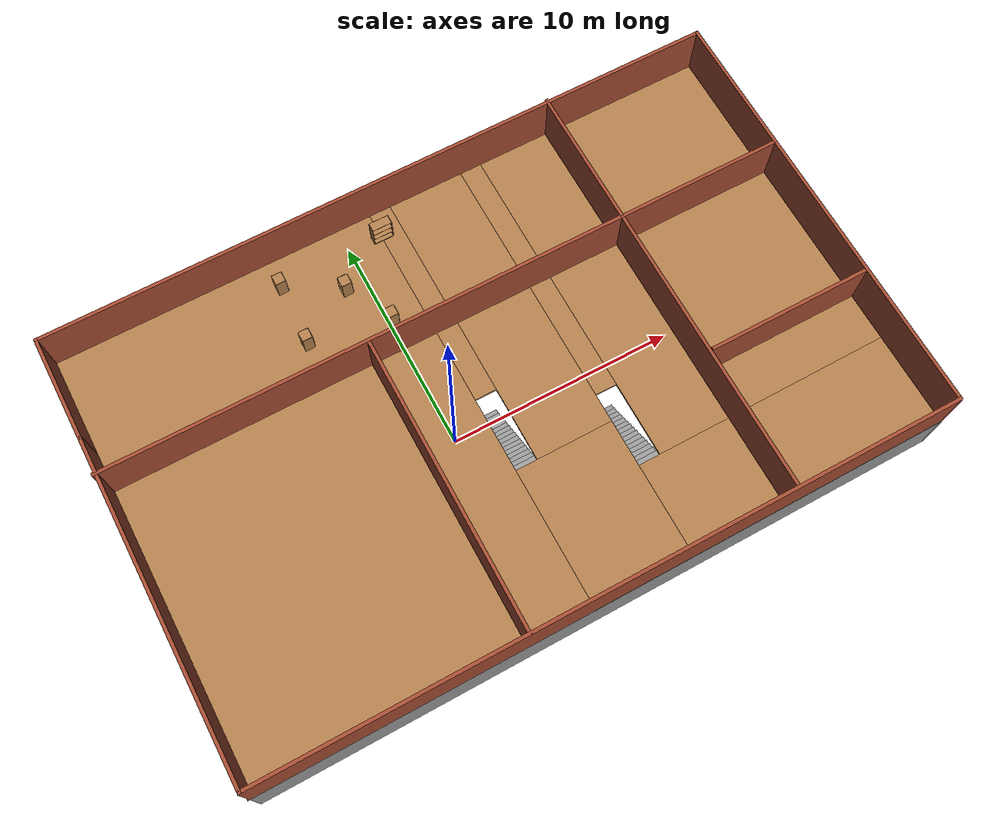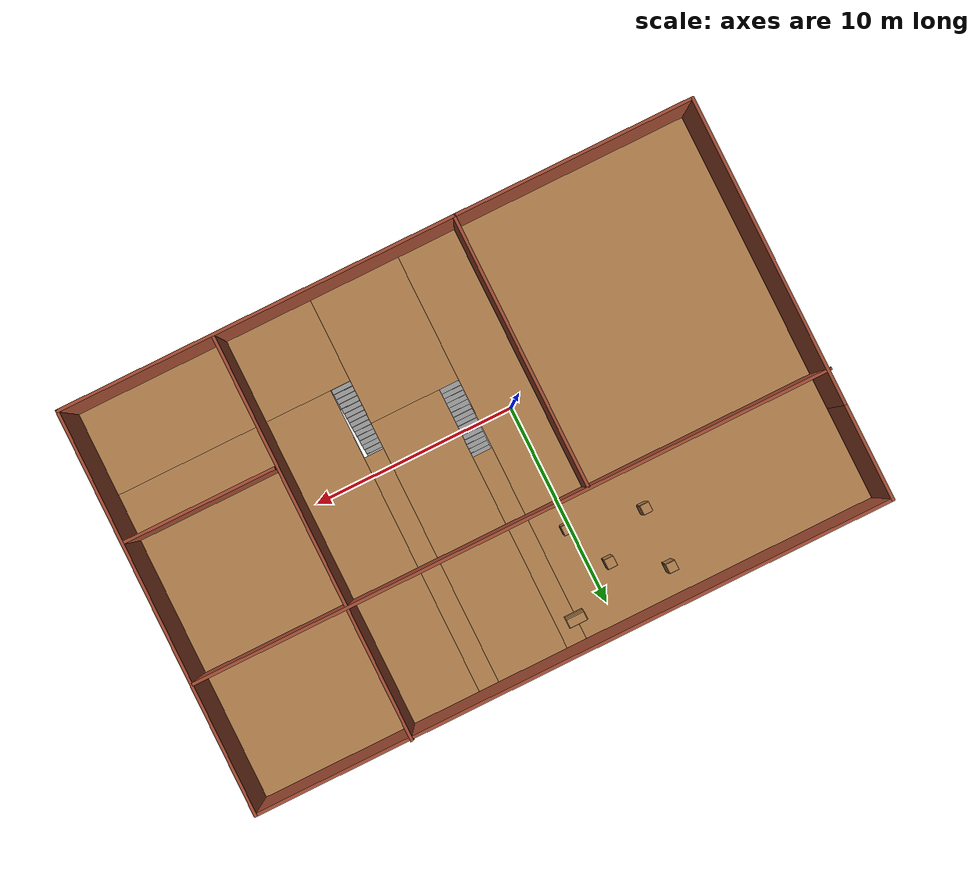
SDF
<sdf version="1.6">
 <world name="default">
  <model name="Untitled">
   <pose>2.40942 1.27756 -2.6 0 -0 0</pose>
   <link name="Floor_1">
    <pose>-0 -0 2.5 0 -0 0</pose>
    <visual name="Floor_1_Visual_0">
     <pose>-8.31719 0 0.05 0 -0 0</pose>
     <geometry><box><size>14.9584 20.0724 0.1</size></box></geometry>
     <material>
      <script><uri>file://media/materials/scripts/gazebo.material</uri><name>Gazebo/Wood</name></script>
      <ambient>1 1 1 1</ambient>
     </material>
     <meta><layer>1</layer></meta>
    </visual>
    <collision name="Floor_1_Collision_0">
     <geometry><box><size>14.9584 20.0724 0.1</size></box></geometry>
     <pose>-8.31719 0 0.05 0 -0 0</pose>
    </collision>
    <visual name="Floor_1_Visual_1">
     <pose>1.42625 -6.78262 0.05 0 -0 0</pose>
     <geometry><box><size>4.52845 6.50717 0.1</size></box></geometry>
     <material>
      <script><uri>file://media/materials/scripts/gazebo.material</uri><name>Gazebo/Wood</name></script>
      <ambient>1 1 1 1</ambient>
     </material>
     <meta><layer>1</layer></meta>
    </visual>
    <collision name="Floor_1_Collision_1">
     <geometry><box><size>4.52845 6.50717 0.1</size></box></geometry>
     <pose>1.42625 -6.78262 0.05 0 -0 0</pose>
    </collision>
    <visual name="Floor_1_Visual_2">
     <pose>9.74344 -7.87936 0.05 0 -0 0</pose>
     <geometry><box><size>12.1059 4.3137 0.1</size></box></geometry>
     <material>
      <script><uri>file://media/materials/scripts/gazebo.material</uri><name>Gazebo/Wood</name></script>
      <ambient>1 1 1 1</ambient>
     </material>
     <meta><layer>1</layer></meta>
    </visual>
    <collision name="Floor_1_Collision_2">
     <geometry><box><size>12.1059 4.3137 0.1</size></box></geometry>
     <pose>9.74344 -7.87936 0.05 0 -0 0</pose>
    </collision>
    <visual name="Floor_1_Visual_3">
     <pose>10.2434 2.15685 0.05 0 -0 0</pose>
     <geometry><box><size>11.1059 15.7587 0.1</size></box></geometry>
     <material>
      <script><uri>file://media/materials/scripts/gazebo.material</uri><name>Gazebo/Wood</name></script>
      <ambient>1 1 1 1</ambient>
     </material>
     <meta><layer>1</layer></meta>
    </visual>
    <collision name="Floor_1_Collision_3">
     <geometry><box><size>11.1059 15.7587 0.1</size></box></geometry>
     <pose>10.2434 2.15685 0.05 0 -0 0</pose>
    </collision>
    <visual name="Floor_1_Visual_4">
     <pose>1.92625 3.25358 0.05 0 -0 0</pose>
     <geometry><box><size>3.52845 13.5652 0.1</size></box></geometry>
     <material>
      <script><uri>file://media/materials/scripts/gazebo.material</uri><name>Gazebo/Wood</name></script>
      <ambient>1 1 1 1</ambient>
     </material>
     <meta><layer>1</layer></meta>
    </visual>
    <collision name="Floor_1_Collision_4">
     <geometry><box><size>3.52845 13.5652 0.1</size></box></geometry>
     <pose>1.92625 3.25358 0.05 0 -0 0</pose>
    </collision>
    <visual name="Floor_1_Visual_5">
     <pose>4.19048 3.90685 0.05 0 -0 0</pose>
     <geometry><box><size>1 12.2587 0.1</size></box></geometry>
     <material>
      <script><uri>file://media/materials/scripts/gazebo.material</uri><name>Gazebo/Wood</name></script>
      <ambient>1 1 1 1</ambient>
     </material>
     <meta><layer>1</layer></meta>
    </visual>
    <collision name="Floor_1_Collision_5">
     <geometry><box><size>1 12.2587 0.1</size></box></geometry>
     <pose>4.19048 3.90685 0.05 0 -0 0</pose>
    </collision>
    <visual name="Floor_1_Visual_6">
     <pose>-0.337975 5.00358 0.05 0 -0 0</pose>
     <geometry><box><size>1 10.0652 0.1</size></box></geometry>
     <material>
      <script><uri>file://media/materials/scripts/gazebo.material</uri><name>Gazebo/Wood</name></script>
      <ambient>1 1 1 1</ambient>
     </material>
     <meta><layer>1</layer></meta>
    </visual>
    <collision name="Floor_1_Collision_6">
     <geometry><box><size>1 10.0652 0.1</size></box></geometry>
     <pose>-0.337975 5.00358 0.05 0 -0 0</pose>
    </collision>
   </link>
   <link name="Stairs_2">
    <visual name="Stairs_2_Visual_0">
     <pose>-0.337975 -0.145704 0.083333 0 -0 0</pose>
     <geometry><box><size>1 0.233333 0.166667</size></box></geometry>
     <material>
      <script><uri>file://media/materials/scripts/gazebo.material</uri><name>Gazebo/Grey</name></script>
      <ambient>1 1 1 1</ambient>
     </material>
     <meta><layer>0</layer></meta>
    </visual>
    <collision name="Stairs_2_Collision_0">
     <geometry><box><size>1 0.233333 0.166667</size></box></geometry>
     <pose>-0.337975 -0.145704 0.083333 0 -0 0</pose>
    </collision>
    <visual name="Stairs_2_Visual_1">
     <pose>-0.337975 -0.379037 0.25 0 -0 0</pose>
     <geometry><box><size>1 0.233333 0.166667</size></box></geometry>
     <material>
      <script><uri>file://media/materials/scripts/gazebo.material</uri><name>Gazebo/Grey</name></script>
      <ambient>1 1 1 1</ambient>
     </material>
     <meta><layer>0</layer></meta>
    </visual>
    <collision name="Stairs_2_Collision_1">
     <geometry><box><size>1 0.233333 0.166667</size></box></geometry>
     <pose>-0.337975 -0.379037 0.25 0 -0 0</pose>
    </collision>
    <visual name="Stairs_2_Visual_2">
     <pose>-0.337975 -0.61237 0.416667 0 -0 0</pose>
     <geometry><box><size>1 0.233333 0.166667</size></box></geometry>
     <material>
      <script><uri>file://media/materials/scripts/gazebo.material</uri><name>Gazebo/Grey</name></script>
      <ambient>1 1 1 1</ambient>
     </material>
     <meta><layer>0</layer></meta>
    </visual>
    <collision name="Stairs_2_Collision_2">
     <geometry><box><size>1 0.233333 0.166667</size></box></geometry>
     <pose>-0.337975 -0.61237 0.416667 0 -0 0</pose>
    </collision>
    <visual name="Stairs_2_Visual_3">
     <pose>-0.337975 -0.845704 0.583333 0 -0 0</pose>
     <geometry><box><size>1 0.233333 0.166667</size></box></geometry>
     <material>
      <script><uri>file://media/materials/scripts/gazebo.material</uri><name>Gazebo/Grey</name></script>
      <ambient>1 1 1 1</ambient>
     </material>
     <meta><layer>0</layer></meta>
    </visual>
    <collision name="Stairs_2_Collision_3">
     <geometry><box><size>1 0.233333 0.166667</size></box></geometry>
     <pose>-0.337975 -0.845704 0.583333 0 -0 0</pose>
    </collision>
    <visual name="Stairs_2_Visual_4">
     <pose>-0.337975 -1.07904 0.75 0 -0 0</pose>
     <geometry><box><size>1 0.233333 0.166667</size></box></geometry>
     <material>
      <script><uri>file://media/materials/scripts/gazebo.material</uri><name>Gazebo/Grey</name></script>
      <ambient>1 1 1 1</ambient>
     </material>
     <meta><layer>0</layer></meta>
    </visual>
    <collision name="Stairs_2_Collision_4">
     <geometry><box><size>1 0.233333 0.166667</size></box></geometry>
     <pose>-0.337975 -1.07904 0.75 0 -0 0</pose>
    </collision>
    <visual name="Stairs_2_Visual_5">
     <pose>-0.337975 -1.31237 0.916667 0 -0 0</pose>
     <geometry><box><size>1 0.233333 0.166667</size></box></geometry>
     <material>
      <script><uri>file://media/materials/scripts/gazebo.material</uri><name>Gazebo/Grey</name></script>
      <ambient>1 1 1 1</ambient>
     </material>
     <meta><layer>0</layer></meta>
    </visual>
    <collision name="Stairs_2_Collision_5">
     <geometry><box><size>1 0.233333 0.166667</size></box></geometry>
     <pose>-0.337975 -1.31237 0.916667 0 -0 0</pose>
    </collision>
    <visual name="Stairs_2_Visual_6">
     <pose>-0.337975 -1.5457 1.08333 0 -0 0</pose>
     <geometry><box><size>1 0.233333 0.166667</size></box></geometry>
     <material>
      <script><uri>file://media/materials/scripts/gazebo.material</uri><name>Gazebo/Grey</name></script>
      <ambient>1 1 1 1</ambient>
     </material>
     <meta><layer>0</layer></meta>
    </visual>
    <collision name="Stairs_2_Collision_6">
     <geometry><box><size>1 0.233333 0.166667</size></box></geometry>
     <pose>-0.337975 -1.5457 1.08333 0 -0 0</pose>
    </collision>
    <visual name="Stairs_2_Visual_7">
     <pose>-0.337975 -1.77904 1.25 0 -0 0</pose>
     <geometry><box><size>1 0.233333 0.166667</size></box></geometry>
     <material>
      <script><uri>file://media/materials/scripts/gazebo.material</uri><name>Gazebo/Grey</name></script>
      <ambient>1 1 1 1</ambient>
     </material>
     <meta><layer>0</layer></meta>
    </visual>
    <collision name="Stairs_2_Collision_7">
     <geometry><box><size>1 0.233333 0.166667</size></box></geometry>
     <pose>-0.337975 -1.77904 1.25 0 -0 0</pose>
    </collision>
    <visual name="Stairs_2_Visual_8">
     <pose>-0.337975 -2.01237 1.41667 0 -0 0</pose>
     <geometry><box><size>1 0.233333 0.166667</size></box></geometry>
     <material>
      <script><uri>file://media/materials/scripts/gazebo.material</uri><name>Gazebo/Grey</name></script>
      <ambient>1 1 1 1</ambient>
     </material>
     <meta><layer>0</layer></meta>
    </visual>
    <collision name="Stairs_2_Collision_8">
     <geometry><box><size>1 0.233333 0.166667</size></box></geometry>
     <pose>-0.337975 -2.01237 1.41667 0 -0 0</pose>
    </collision>
    <visual name="Stairs_2_Visual_9">
     <pose>-0.337975 -2.2457 1.58333 0 -0 0</pose>
     <geometry><box><size>1 0.233333 0.166667</size></box></geometry>
     <material>
      <script><uri>file://media/materials/scripts/gazebo.material</uri><name>Gazebo/Grey</name></script>
      <ambient>1 1 1 1</ambient>
     </material>
     <meta><layer>0</layer></meta>
    </visual>
    <collision name="Stairs_2_Collision_9">
     <geometry><box><size>1 0.233333 0.166667</size></box></geometry>
     <pose>-0.337975 -2.2457 1.58333 0 -0 0</pose>
    </collision>
    <visual name="Stairs_2_Visual_10">
     <pose>-0.337975 -2.47904 1.75 0 -0 0</pose>
     <geometry><box><size>1 0.233333 0.166667</size></box></geometry>
     <material>
      <script><uri>file://media/materials/scripts/gazebo.material</uri><name>Gazebo/Grey</name></script>
      <ambient>1 1 1 1</ambient>
     </material>
     <meta><layer>0</layer></meta>
    </visual>
    <collision name="Stairs_2_Collision_10">
     <geometry><box><size>1 0.233333 0.166667</size></box></geometry>
     <pose>-0.337975 -2.47904 1.75 0 -0 0</pose>
    </collision>
    <visual name="Stairs_2_Visual_11">
     <pose>-0.337975 -2.71237 1.91667 0 -0 0</pose>
     <geometry><box><size>1 0.233333 0.166667</size></box></geometry>
     <material>
      <script><uri>file://media/materials/scripts/gazebo.material</uri><name>Gazebo/Grey</name></script>
      <ambient>1 1 1 1</ambient>
     </material>
     <meta><layer>0</layer></meta>
    </visual>
    <collision name="Stairs_2_Collision_11">
     <geometry><box><size>1 0.233333 0.166667</size></box></geometry>
     <pose>-0.337975 -2.71237 1.91667 0 -0 0</pose>
    </collision>
    <visual name="Stairs_2_Visual_12">
     <pose>-0.337975 -2.9457 2.08333 0 -0 0</pose>
     <geometry><box><size>1 0.233333 0.166667</size></box></geometry>
     <material>
      <script><uri>file://media/materials/scripts/gazebo.material</uri><name>Gazebo/Grey</name></script>
      <ambient>1 1 1 1</ambient>
     </material>
     <meta><layer>0</layer></meta>
    </visual>
    <collision name="Stairs_2_Collision_12">
     <geometry><box><size>1 0.233333 0.166667</size></box></geometry>
     <pose>-0.337975 -2.9457 2.08333 0 -0 0</pose>
    </collision>
    <visual name="Stairs_2_Visual_13">
     <pose>-0.337975 -3.17904 2.25 0 -0 0</pose>
     <geometry><box><size>1 0.233333 0.166667</size></box></geometry>
     <material>
      <script><uri>file://media/materials/scripts/gazebo.material</uri><name>Gazebo/Grey</name></script>
      <ambient>1 1 1 1</ambient>
     </material>
     <meta><layer>0</layer></meta>
    </visual>
    <collision name="Stairs_2_Collision_13">
     <geometry><box><size>1 0.233333 0.166667</size></box></geometry>
     <pose>-0.337975 -3.17904 2.25 0 -0 0</pose>
    </collision>
    <visual name="Stairs_2_Visual_14">
     <pose>-0.337975 -3.41237 2.41667 0 -0 0</pose>
     <geometry><box><size>1 0.233333 0.166667</size></box></geometry>
     <material>
      <script><uri>file://media/materials/scripts/gazebo.material</uri><name>Gazebo/Grey</name></script>
      <ambient>1 1 1 1</ambient>
     </material>
     <meta><layer>0</layer></meta>
    </visual>
    <collision name="Stairs_2_Collision_14">
     <geometry><box><size>1 0.233333 0.166667</size></box></geometry>
     <pose>-0.337975 -3.41237 2.41667 0 -0 0</pose>
    </collision>
   </link>
   <link name="Stairs_3">
    <visual name="Stairs_3_Visual_0">
     <pose>4.19048 -2.33917 0.083333 0 -0 0</pose>
     <geometry><box><size>1 0.233333 0.166667</size></box></geometry>
     <material>
      <script><uri>file://media/materials/scripts/gazebo.material</uri><name>Gazebo/Grey</name></script>
      <ambient>1 1 1 1</ambient>
     </material>
     <meta><layer>0</layer></meta>
    </visual>
    <collision name="Stairs_3_Collision_0">
     <geometry><box><size>1 0.233333 0.166667</size></box></geometry>
     <pose>4.19048 -2.33917 0.083333 0 -0 0</pose>
    </collision>
    <visual name="Stairs_3_Visual_1">
     <pose>4.19048 -2.57251 0.25 0 -0 0</pose>
     <geometry><box><size>1 0.233333 0.166667</size></box></geometry>
     <material>
      <script><uri>file://media/materials/scripts/gazebo.material</uri><name>Gazebo/Grey</name></script>
      <ambient>1 1 1 1</ambient>
     </material>
     <meta><layer>0</layer></meta>
    </visual>
    <collision name="Stairs_3_Collision_1">
     <geometry><box><size>1 0.233333 0.166667</size></box></geometry>
     <pose>4.19048 -2.57251 0.25 0 -0 0</pose>
    </collision>
    <visual name="Stairs_3_Visual_2">
     <pose>4.19048 -2.80584 0.416667 0 -0 0</pose>
     <geometry><box><size>1 0.233333 0.166667</size></box></geometry>
     <material>
      <script><uri>file://media/materials/scripts/gazebo.material</uri><name>Gazebo/Grey</name></script>
      <ambient>1 1 1 1</ambient>
     </material>
     <meta><layer>0</layer></meta>
    </visual>
    <collision name="Stairs_3_Collision_2">
     <geometry><box><size>1 0.233333 0.166667</size></box></geometry>
     <pose>4.19048 -2.80584 0.416667 0 -0 0</pose>
    </collision>
    <visual name="Stairs_3_Visual_3">
     <pose>4.19048 -3.03917 0.583333 0 -0 0</pose>
     <geometry><box><size>1 0.233333 0.166667</size></box></geometry>
     <material>
      <script><uri>file://media/materials/scripts/gazebo.material</uri><name>Gazebo/Grey</name></script>
      <ambient>1 1 1 1</ambient>
     </material>
     <meta><layer>0</layer></meta>
    </visual>
    <collision name="Stairs_3_Collision_3">
     <geometry><box><size>1 0.233333 0.166667</size></box></geometry>
     <pose>4.19048 -3.03917 0.583333 0 -0 0</pose>
    </collision>
    <visual name="Stairs_3_Visual_4">
     <pose>4.19048 -3.27251 0.75 0 -0 0</pose>
     <geometry><box><size>1 0.233333 0.166667</size></box></geometry>
     <material>
      <script><uri>file://media/materials/scripts/gazebo.material</uri><name>Gazebo/Grey</name></script>
      <ambient>1 1 1 1</ambient>
     </material>
     <meta><layer>0</layer></meta>
    </visual>
    <collision name="Stairs_3_Collision_4">
     <geometry><box><size>1 0.233333 0.166667</size></box></geometry>
     <pose>4.19048 -3.27251 0.75 0 -0 0</pose>
    </collision>
    <visual name="Stairs_3_Visual_5">
     <pose>4.19048 -3.50584 0.916667 0 -0 0</pose>
     <geometry><box><size>1 0.233333 0.166667</size></box></geometry>
     <material>
      <script><uri>file://media/materials/scripts/gazebo.material</uri><name>Gazebo/Grey</name></script>
      <ambient>1 1 1 1</ambient>
     </material>
     <meta><layer>0</layer></meta>
    </visual>
    <collision name="Stairs_3_Collision_5">
     <geometry><box><size>1 0.233333 0.166667</size></box></geometry>
     <pose>4.19048 -3.50584 0.916667 0 -0 0</pose>
    </collision>
    <visual name="Stairs_3_Visual_6">
     <pose>4.19048 -3.73917 1.08333 0 -0 0</pose>
     <geometry><box><size>1 0.233333 0.166667</size></box></geometry>
     <material>
      <script><uri>file://media/materials/scripts/gazebo.material</uri><name>Gazebo/Grey</name></script>
      <ambient>1 1 1 1</ambient>
     </material>
     <meta><layer>0</layer></meta>
    </visual>
    <collision name="Stairs_3_Collision_6">
     <geometry><box><size>1 0.233333 0.166667</size></box></geometry>
     <pose>4.19048 -3.73917 1.08333 0 -0 0</pose>
    </collision>
    <visual name="Stairs_3_Visual_7">
     <pose>4.19048 -3.97251 1.25 0 -0 0</pose>
     <geometry><box><size>1 0.233333 0.166667</size></box></geometry>
     <material>
      <script><uri>file://media/materials/scripts/gazebo.material</uri><name>Gazebo/Grey</name></script>
      <ambient>1 1 1 1</ambient>
     </material>
     <meta><layer>0</layer></meta>
    </visual>
    <collision name="Stairs_3_Collision_7">
     <geometry><box><size>1 0.233333 0.166667</size></box></geometry>
     <pose>4.19048 -3.97251 1.25 0 -0 0</pose>
    </collision>
    <visual name="Stairs_3_Visual_8">
     <pose>4.19048 -4.20584 1.41667 0 -0 0</pose>
     <geometry><box><size>1 0.233333 0.166667</size></box></geometry>
     <material>
      <script><uri>file://media/materials/scripts/gazebo.material</uri><name>Gazebo/Grey</name></script>
      <ambient>1 1 1 1</ambient>
     </material>
     <meta><layer>0</layer></meta>
    </visual>
    <collision name="Stairs_3_Collision_8">
     <geometry><box><size>1 0.233333 0.166667</size></box></geometry>
     <pose>4.19048 -4.20584 1.41667 0 -0 0</pose>
    </collision>
    <visual name="Stairs_3_Visual_9">
     <pose>4.19048 -4.43917 1.58333 0 -0 0</pose>
     <geometry><box><size>1 0.233333 0.166667</size></box></geometry>
     <material>
      <script><uri>file://media/materials/scripts/gazebo.material</uri><name>Gazebo/Grey</name></script>
      <ambient>1 1 1 1</ambient>
     </material>
     <meta><layer>0</layer></meta>
    </visual>
    <collision name="Stairs_3_Collision_9">
     <geometry><box><size>1 0.233333 0.166667</size></box></geometry>
     <pose>4.19048 -4.43917 1.58333 0 -0 0</pose>
    </collision>
    <visual name="Stairs_3_Visual_10">
     <pose>4.19048 -4.67251 1.75 0 -0 0</pose>
     <geometry><box><size>1 0.233333 0.166667</size></box></geometry>
     <material>
      <script><uri>file://media/materials/scripts/gazebo.material</uri><name>Gazebo/Grey</name></script>
      <ambient>1 1 1 1</ambient>
     </material>
     <meta><layer>0</layer></meta>
    </visual>
    <collision name="Stairs_3_Collision_10">
     <geometry><box><size>1 0.233333 0.166667</size></box></geometry>
     <pose>4.19048 -4.67251 1.75 0 -0 0</pose>
    </collision>
    <visual name="Stairs_3_Visual_11">
     <pose>4.19048 -4.90584 1.91667 0 -0 0</pose>
     <geometry><box><size>1 0.233333 0.166667</size></box></geometry>
     <material>
      <script><uri>file://media/materials/scripts/gazebo.material</uri><name>Gazebo/Grey</name></script>
      <ambient>1 1 1 1</ambient>
     </material>
     <meta><layer>0</layer></meta>
    </visual>
    <collision name="Stairs_3_Collision_11">
     <geometry><box><size>1 0.233333 0.166667</size></box></geometry>
     <pose>4.19048 -4.90584 1.91667 0 -0 0</pose>
    </collision>
    <visual name="Stairs_3_Visual_12">
     <pose>4.19048 -5.13917 2.08333 0 -0 0</pose>
     <geometry><box><size>1 0.233333 0.166667</size></box></geometry>
     <material>
      <script><uri>file://media/materials/scripts/gazebo.material</uri><name>Gazebo/Grey</name></script>
      <ambient>1 1 1 1</ambient>
     </material>
     <meta><layer>0</layer></meta>
    </visual>
    <collision name="Stairs_3_Collision_12">
     <geometry><box><size>1 0.233333 0.166667</size></box></geometry>
     <pose>4.19048 -5.13917 2.08333 0 -0 0</pose>
    </collision>
    <visual name="Stairs_3_Visual_13">
     <pose>4.19048 -5.37251 2.25 0 -0 0</pose>
     <geometry><box><size>1 0.233333 0.166667</size></box></geometry>
     <material>
      <script><uri>file://media/materials/scripts/gazebo.material</uri><name>Gazebo/Grey</name></script>
      <ambient>1 1 1 1</ambient>
     </material>
     <meta><layer>0</layer></meta>
    </visual>
    <collision name="Stairs_3_Collision_13">
     <geometry><box><size>1 0.233333 0.166667</size></box></geometry>
     <pose>4.19048 -5.37251 2.25 0 -0 0</pose>
    </collision>
    <visual name="Stairs_3_Visual_14">
     <pose>4.19048 -5.60584 2.41667 0 -0 0</pose>
     <geometry><box><size>1 0.233333 0.166667</size></box></geometry>
     <material>
      <script><uri>file://media/materials/scripts/gazebo.material</uri><name>Gazebo/Grey</name></script>
      <ambient>1 1 1 1</ambient>
     </material>
     <meta><layer>0</layer></meta>
    </visual>
    <collision name="Stairs_3_Collision_14">
     <geometry><box><size>1 0.233333 0.166667</size></box></geometry>
     <pose>4.19048 -5.60584 2.41667 0 -0 0</pose>
    </collision>
   </link>
   <link name="Wall_1">
    <collision name="Wall_1_Collision">
     <geometry><box><size>15.25 0.15 2.5</size></box></geometry>
     <pose>0 0 1.25 0 -0 0</pose>
    </collision>
    <visual name="Wall_1_Visual">
     <pose>0 0 1.25 0 -0 0</pose>
     <geometry><box><size>15.25 0.15 2.5</size></box></geometry>
     <material>
      <script><uri>file://media/materials/scripts/gazebo.material</uri><name>Gazebo/Grey</name></script>
      <ambient>1 1 1 1</ambient>
     </material>
     <meta><layer>0</layer></meta>
    </visual>
    <pose>-15.6286 -2.4112 0 0 -0 -1.5708</pose>
   </link>
   <link name="Wall_11">
    <collision name="Wall_11_Collision">
     <geometry><box><size>20 0.15 2.5</size></box></geometry>
     <pose>0 0 1.25 0 -0 0</pose>
    </collision>
    <visual name="Wall_11_Visual">
     <pose>0 0 1.25 0 -0 0</pose>
     <geometry><box><size>20 0.15 2.5</size></box></geometry>
     <material>
      <script><uri>file://media/materials/scripts/gazebo.material</uri><name>Gazebo/Grey</name></script>
      <ambient>1 1 1 1</ambient>
     </material>
     <meta><layer>0</layer></meta>
    </visual>
    <pose>8.08989 0.036204 0 0 -0 -1.5708</pose>
   </link>
   <link name="Wall_13">
    <collision name="Wall_13_Collision">
     <geometry><box><size>7.5 0.15 2.5</size></box></geometry>
     <pose>0 0 1.25 0 -0 0</pose>
    </collision>
    <visual name="Wall_13_Visual">
     <pose>0 0 1.25 0 -0 0</pose>
     <geometry><box><size>7.5 0.15 2.5</size></box></geometry>
     <material>
      <script><uri>file://media/materials/scripts/gazebo.material</uri><name>Gazebo/Grey</name></script>
      <ambient>1 1 1 1</ambient>
     </material>
     <meta><layer>0</layer></meta>
    </visual>
    <pose>11.9536 -3.45187 0 0 -0 0</pose>
   </link>
   <link name="Wall_16">
    <collision name="Wall_16_Collision">
     <geometry><box><size>31.5 0.15 2.5</size></box></geometry>
     <pose>0 0 1.25 0 -0 0</pose>
    </collision>
    <visual name="Wall_16_Visual">
     <pose>0 0 1.25 0 -0 0</pose>
     <geometry><box><size>31.5 0.15 2.5</size></box></geometry>
     <material>
      <script><uri>file://media/materials/scripts/gazebo.material</uri><name>Gazebo/Grey</name></script>
      <ambient>1 1 1 1</ambient>
     </material>
     <meta><layer>0</layer></meta>
    </visual>
    <pose>-0.0464 3.50078 0 0 -0 0</pose>
   </link>
   <link name="Wall_2">
    <collision name="Wall_2_Collision">
     <geometry><box><size>31.5 0.15 2.5</size></box></geometry>
     <pose>0 0 1.25 0 -0 0</pose>
    </collision>
    <visual name="Wall_2_Visual">
     <pose>0 0 1.25 0 -0 0</pose>
     <geometry><box><size>31.5 0.15 2.5</size></box></geometry>
     <material>
      <script><uri>file://media/materials/scripts/gazebo.material</uri><name>Gazebo/Grey</name></script>
      <ambient>1 1 1 1</ambient>
     </material>
     <meta><layer>0</layer></meta>
    </visual>
    <pose>0.046399 -9.9612 0 0 -0 0</pose>
   </link>
   <link name="Wall_3">
    <collision name="Wall_3_Collision">
     <geometry><box><size>20 0.15 2.5</size></box></geometry>
     <pose>0 0 1.25 0 -0 0</pose>
    </collision>
    <visual name="Wall_3_Visual">
     <pose>0 0 1.25 0 -0 0</pose>
     <geometry><box><size>20 0.15 2.5</size></box></geometry>
     <material>
      <script><uri>file://media/materials/scripts/gazebo.material</uri><name>Gazebo/Grey</name></script>
      <ambient>1 1 1 1</ambient>
     </material>
     <meta><layer>0</layer></meta>
    </visual>
    <pose>15.7214 -0.036205 0 0 -0 1.5708</pose>
   </link>
   <link name="Wall_32">
    <collision name="Wall_32_Collision">
     <geometry><box><size>15.25 0.15 2.5</size></box></geometry>
     <pose>0 0 1.25 0 -0 0</pose>
    </collision>
    <visual name="Wall_32_Visual">
     <pose>0 0 1.25 0 -0 0</pose>
     <geometry><box><size>15.25 0.15 2.5</size></box></geometry>
     <material>
      <script><uri>file://media/materials/scripts/gazebo.material</uri><name>Gazebo/Bricks</name></script>
      <ambient>1 1 1 1</ambient>
     </material>
     <meta><layer>1</layer></meta>
    </visual>
    <pose>-15.6286 -2.4112 2.5 0 -0 -1.5708</pose>
   </link>
   <link name="Wall_33">
    <collision name="Wall_33_Collision">
     <geometry><box><size>31.5 0.15 2.5</size></box></geometry>
     <pose>0 0 1.25 0 -0 0</pose>
    </collision>
    <visual name="Wall_33_Visual">
     <pose>0 0 1.25 0 -0 0</pose>
     <geometry><box><size>31.5 0.15 2.5</size></box></geometry>
     <material>
      <script><uri>file://media/materials/scripts/gazebo.material</uri><name>Gazebo/Bricks</name></script>
      <ambient>1 1 1 1</ambient>
     </material>
     <meta><layer>1</layer></meta>
    </visual>
    <pose>0.046399 -9.9612 2.5 0 -0 0</pose>
   </link>
   <link name="Wall_34">
    <collision name="Wall_34_Collision">
     <geometry><box><size>20 0.15 2.5</size></box></geometry>
     <pose>0 0 1.25 0 -0 0</pose>
    </collision>
    <visual name="Wall_34_Visual">
     <pose>0 0 1.25 0 -0 0</pose>
     <geometry><box><size>20 0.15 2.5</size></box></geometry>
     <material>
      <script><uri>file://media/materials/scripts/gazebo.material</uri><name>Gazebo/Bricks</name></script>
      <ambient>1 1 1 1</ambient>
     </material>
     <meta><layer>1</layer></meta>
    </visual>
    <pose>15.7214 -0.036205 2.5 0 -0 1.5708</pose>
   </link>
   <link name="Wall_35">
    <collision name="Wall_35_Collision">
     <geometry><box><size>31.5 0.15 2.5</size></box></geometry>
     <pose>0 0 1.25 0 -0 0</pose>
    </collision>
    <visual name="Wall_35_Visual">
     <pose>0 0 1.25 0 -0 0</pose>
     <geometry><box><size>31.5 0.15 2.5</size></box></geometry>
     <material>
      <script><uri>file://media/materials/scripts/gazebo.material</uri><name>Gazebo/Bricks</name></script>
      <ambient>1 1 1 1</ambient>
     </material>
     <meta><layer>1</layer></meta>
    </visual>
    <pose>0.046399 9.8888 2.5 0 -0 3.14159</pose>
   </link>
   <link name="Wall_36">
    <collision name="Wall_36_Collision">
     <geometry><box><size>4.9 0.15 2.5</size></box></geometry>
     <pose>0 0 1.25 0 -0 0</pose>
    </collision>
    <visual name="Wall_36_Visual">
     <pose>0 0 1.25 0 -0 0</pose>
     <geometry><box><size>4.9 0.15 2.5</size></box></geometry>
     <material>
      <script><uri>file://media/materials/scripts/gazebo.material</uri><name>Gazebo/Bricks</name></script>
      <ambient>1 1 1 1</ambient>
     </material>
     <meta><layer>1</layer></meta>
    </visual>
    <pose>-15.6286 7.51379 2.5 0 -0 -1.5708</pose>
   </link>
   <link name="Wall_37">
    <collision name="Wall_37_Collision">
     <geometry><box><size>13.5 0.15 2.5</size></box></geometry>
     <pose>0 0 1.25 0 -0 0</pose>
    </collision>
    <visual name="Wall_37_Visual">
     <pose>0 0 1.25 0 -0 0</pose>
     <geometry><box><size>13.5 0.15 2.5</size></box></geometry>
     <material>
      <script><uri>file://media/materials/scripts/gazebo.material</uri><name>Gazebo/Bricks</name></script>
      <ambient>1 1 1 1</ambient>
     </material>
     <meta><layer>1</layer></meta>
    </visual>
    <pose>-3.81883 -3.28455 2.5 0 -0 -1.5708</pose>
   </link>
   <link name="Wall_38">
    <collision name="Wall_38_Collision">
     <geometry><box><size>20 0.15 2.5</size></box></geometry>
     <pose>0 0 1.25 0 -0 0</pose>
    </collision>
    <visual name="Wall_38_Visual">
     <pose>0 0 1.25 0 -0 0</pose>
     <geometry><box><size>20 0.15 2.5</size></box></geometry>
     <material>
      <script><uri>file://media/materials/scripts/gazebo.material</uri><name>Gazebo/Bricks</name></script>
      <ambient>1 1 1 1</ambient>
     </material>
     <meta><layer>1</layer></meta>
    </visual>
    <pose>8.08989 0.036204 2.5 0 -0 -1.5708</pose>
   </link>
   <link name="Wall_39">
    <collision name="Wall_39_Collision">
     <geometry><box><size>7.5 0.15 2.5</size></box></geometry>
     <pose>0 0 1.25 0 -0 0</pose>
    </collision>
    <visual name="Wall_39_Visual">
     <pose>0 0 1.25 0 -0 0</pose>
     <geometry><box><size>7.5 0.15 2.5</size></box></geometry>
     <material>
      <script><uri>file://media/materials/scripts/gazebo.material</uri><name>Gazebo/Bricks</name></script>
      <ambient>1 1 1 1</ambient>
     </material>
     <meta><layer>1</layer></meta>
    </visual>
    <pose>11.9536 -3.45187 2.5 0 -0 0</pose>
   </link>
   <link name="Wall_4">
    <collision name="Wall_4_Collision">
     <geometry><box><size>31.5 0.15 2.5</size></box></geometry>
     <pose>0 0 1.25 0 -0 0</pose>
    </collision>
    <visual name="Wall_4_Visual">
     <pose>0 0 1.25 0 -0 0</pose>
     <geometry><box><size>31.5 0.15 2.5</size></box></geometry>
     <material>
      <script><uri>file://media/materials/scripts/gazebo.material</uri><name>Gazebo/Grey</name></script>
      <ambient>1 1 1 1</ambient>
     </material>
     <meta><layer>0</layer></meta>
    </visual>
    <pose>0.046399 9.88879 0 0 -0 3.14159</pose>
   </link>
   <link name="Wall_40">
    <collision name="Wall_40_Collision">
     <geometry><box><size>31.5 0.15 2.5</size></box></geometry>
     <pose>0 0 1.25 0 -0 0</pose>
    </collision>
    <visual name="Wall_40_Visual">
     <pose>0 0 1.25 0 -0 0</pose>
     <geometry><box><size>31.5 0.15 2.5</size></box></geometry>
     <material>
      <script><uri>file://media/materials/scripts/gazebo.material</uri><name>Gazebo/Bricks</name></script>
      <ambient>1 1 1 1</ambient>
     </material>
     <meta><layer>1</layer></meta>
    </visual>
    <pose>-0.0464 3.50078 2.5 0 -0 0</pose>
   </link>
   <link name="Wall_5">
    <collision name="Wall_5_Collision">
     <geometry><box><size>4.9 0.15 2.5</size></box></geometry>
     <pose>0 0 1.25 0 -0 0</pose>
    </collision>
    <visual name="Wall_5_Visual">
     <pose>0 0 1.25 0 -0 0</pose>
     <geometry><box><size>4.9 0.15 2.5</size></box></geometry>
     <material>
      <script><uri>file://media/materials/scripts/gazebo.material</uri><name>Gazebo/Grey</name></script>
      <ambient>1 1 1 1</ambient>
     </material>
     <meta><layer>0</layer></meta>
    </visual>
    <pose>-15.6286 7.51379 0 0 -0 -1.5708</pose>
   </link>
   <link name="Wall_9">
    <collision name="Wall_9_Collision">
     <geometry><box><size>13.5 0.15 2.5</size></box></geometry>
     <pose>0 0 1.25 0 -0 0</pose>
    </collision>
    <visual name="Wall_9_Visual">
     <pose>0 0 1.25 0 -0 0</pose>
     <geometry><box><size>13.5 0.15 2.5</size></box></geometry>
     <material>
      <script><uri>file://media/materials/scripts/gazebo.material</uri><name>Gazebo/Grey</name></script>
      <ambient>1 1 1 1</ambient>
     </material>
     <meta><layer>0</layer></meta>
    </visual>
    <pose>-3.81883 -3.28455 0 0 -0 -1.5708</pose>
   </link>
   <static>1</static>
  </model>
  <model name="cabinet_0">
   <static>1</static>
   <link name="cabinet_bottom_plate">
    <inertial>
     <pose>0 0 -1 0 -0 0</pose>
     <inertia><ixx>2.05</ixx><ixy>0</ixy><ixz>0</ixz><iyy>2.05</iyy><iyz>0</iyz><izz>2.05</izz></inertia>
     <mass>25</mass>
    </inertial>
    <collision name="cabinet_bottom_plate_geom">
     <pose>0 0 0.01 0 -0 0</pose>
     <geometry><box><size>0.45 0.45 0.02</size></box></geometry>
    </collision>
    <visual name="cabinet_bottom_plate_geom_visual">
     <pose>0 0 0.01 0 -0 0</pose>
     <geometry><box><size>0.45 0.45 0.02</size></box></geometry>
     <material>
      <script><uri>file://media/materials/scripts/gazebo.material</uri><name>Gazebo/Wood</name></script>
     </material>
    </visual>
    <collision name="cabinet_bottom_plate_geom_cabinet_back_plate">
     <pose>0.235 0 0.51 0 -0 0</pose>
     <geometry><box><size>0.02 0.45 1.02</size></box></geometry>
    </collision>
    <visual name="cabinet_bottom_plate_geom_cabinet_back_plate_visual">
     <pose>0.235 0 0.51 0 -0 0</pose>
     <geometry><box><size>0.02 0.45 1.02</size></box></geometry>
     <material>
      <script><uri>file://media/materials/scripts/gazebo.material</uri><name>Gazebo/Wood</name></script>
     </material>
    </visual>
    <collision name="cabinet_bottom_plate_geom_cabinet_left_plate">
     <pose>0 0.235 0.51 0 -0 0</pose>
     <geometry><box><size>0.45 0.02 1.02</size></box></geometry>
    </collision>
    <visual name="cabinet_bottom_plate_geom_cabinet_left_plate_visual">
     <pose>0 0.235 0.51 0 -0 0</pose>
     <geometry><box><size>0.45 0.02 1.02</size></box></geometry>
     <material>
      <script><uri>file://media/materials/scripts/gazebo.material</uri><name>Gazebo/Wood</name></script>
     </material>
    </visual>
    <collision name="cabinet_bottom_plate_geom_cabinet_middle_plate">
     <pose>0 0 0.51 0 -0 0</pose>
     <geometry><box><size>0.45 0.45 0.02</size></box></geometry>
    </collision>
    <visual name="cabinet_bottom_plate_geom_cabinet_middle_plate_visual">
     <pose>0 0 0.51 0 -0 0</pose>
     <geometry><box><size>0.45 0.45 0.02</size></box></geometry>
     <material>
      <script><uri>file://media/materials/scripts/gazebo.material</uri><name>Gazebo/Wood</name></script>
     </material>
    </visual>
    <collision name="cabinet_bottom_plate_geom_cabinet_right_plate">
     <pose>0 -0.235 0.51 0 -0 0</pose>
     <geometry><box><size>0.45 0.02 1.02</size></box></geometry>
    </collision>
    <visual name="cabinet_bottom_plate_geom_cabinet_right_plate_visual">
     <pose>0 -0.235 0.51 0 -0 0</pose>
     <geometry><box><size>0.45 0.02 1.02</size></box></geometry>
     <material>
      <script><uri>file://media/materials/scripts/gazebo.material</uri><name>Gazebo/Wood</name></script>
     </material>
    </visual>
    <collision name="cabinet_bottom_plate_geom_cabinet_top_plate">
     <pose>0 0 1.01 0 -0 0</pose>
     <geometry><box><size>0.45 0.45 0.02</size></box></geometry>
    </collision>
    <visual name="cabinet_bottom_plate_geom_cabinet_top_plate_visual">
     <pose>0 0 1.01 0 -0 0</pose>
     <geometry><box><size>0.45 0.45 0.02</size></box></geometry>
     <material>
      <script><uri>file://media/materials/scripts/gazebo.material</uri><name>Gazebo/Wood</name></script>
     </material>
    </visual>
   </link>
   <pose>-3.33061 9.72512 0 0 -0 0</pose>
  </model>
  <model name="cabinet_0_clone">
   <static>1</static>
   <link name="cabinet_bottom_plate">
    <inertial>
     <pose>0 0 -1 0 -0 0</pose>
     <inertia><ixx>2.05</ixx><ixy>0</ixy><ixz>0</ixz><iyy>2.05</iyy><iyz>0</iyz><izz>2.05</izz></inertia>
     <mass>25</mass>
    </inertial>
    <collision name="cabinet_bottom_plate_geom">
     <pose>0 0 0.01 0 -0 0</pose>
     <geometry><box><size>0.45 0.45 0.02</size></box></geometry>
    </collision>
    <visual name="cabinet_bottom_plate_geom_visual">
     <pose>0 0 0.01 0 -0 0</pose>
     <geometry><box><size>0.45 0.45 0.02</size></box></geometry>
     <material>
      <script><uri>file://media/materials/scripts/gazebo.material</uri><name>Gazebo/Wood</name></script>
     </material>
    </visual>
    <collision name="cabinet_bottom_plate_geom_cabinet_back_plate">
     <pose>0.235 0 0.51 0 -0 0</pose>
     <geometry><box><size>0.02 0.45 1.02</size></box></geometry>
    </collision>
    <visual name="cabinet_bottom_plate_geom_cabinet_back_plate_visual">
     <pose>0.235 0 0.51 0 -0 0</pose>
     <geometry><box><size>0.02 0.45 1.02</size></box></geometry>
     <material>
      <script><uri>file://media/materials/scripts/gazebo.material</uri><name>Gazebo/Wood</name></script>
     </material>
    </visual>
    <collision name="cabinet_bottom_plate_geom_cabinet_left_plate">
     <pose>0 0.235 0.51 0 -0 0</pose>
     <geometry><box><size>0.45 0.02 1.02</size></box></geometry>
    </collision>
    <visual name="cabinet_bottom_plate_geom_cabinet_left_plate_visual">
     <pose>0 0.235 0.51 0 -0 0</pose>
     <geometry><box><size>0.45 0.02 1.02</size></box></geometry>
     <material>
      <script><uri>file://media/materials/scripts/gazebo.material</uri><name>Gazebo/Wood</name></script>
     </material>
    </visual>
    <collision name="cabinet_bottom_plate_geom_cabinet_middle_plate">
     <pose>0 0 0.51 0 -0 0</pose>
     <geometry><box><size>0.45 0.45 0.02</size></box></geometry>
    </collision>
    <visual name="cabinet_bottom_plate_geom_cabinet_middle_plate_visual">
     <pose>0 0 0.51 0 -0 0</pose>
     <geometry><box><size>0.45 0.45 0.02</size></box></geometry>
     <material>
      <script><uri>file://media/materials/scripts/gazebo.material</uri><name>Gazebo/Wood</name></script>
     </material>
    </visual>
    <collision name="cabinet_bottom_plate_geom_cabinet_right_plate">
     <pose>0 -0.235 0.51 0 -0 0</pose>
     <geometry><box><size>0.45 0.02 1.02</size></box></geometry>
    </collision>
    <visual name="cabinet_bottom_plate_geom_cabinet_right_plate_visual">
     <pose>0 -0.235 0.51 0 -0 0</pose>
     <geometry><box><size>0.45 0.02 1.02</size></box></geometry>
     <material>
      <script><uri>file://media/materials/scripts/gazebo.material</uri><name>Gazebo/Wood</name></script>
     </material>
    </visual>
    <collision name="cabinet_bottom_plate_geom_cabinet_top_plate">
     <pose>0 0 1.01 0 -0 0</pose>
     <geometry><box><size>0.45 0.45 0.02</size></box></geometry>
    </collision>
    <visual name="cabinet_bottom_plate_geom_cabinet_top_plate_visual">
     <pose>0 0 1.01 0 -0 0</pose>
     <geometry><box><size>0.45 0.45 0.02</size></box></geometry>
     <material>
      <script><uri>file://media/materials/scripts/gazebo.material</uri><name>Gazebo/Wood</name></script>
     </material>
    </visual>
   </link>
   <pose>-3.45684 6.83096 0 0 -0 0</pose>
  </model>
  <model name="cabinet_0_clone_0">
   <static>1</static>
   <link name="cabinet_bottom_plate">
    <inertial>
     <pose>0 0 -1 0 -0 0</pose>
     <inertia><ixx>2.05</ixx><ixy>0</ixy><ixz>0</ixz><iyy>2.05</iyy><iyz>0</iyz><izz>2.05</izz></inertia>
     <mass>25</mass>
    </inertial>
    <collision name="cabinet_bottom_plate_geom">
     <pose>0 0 0.01 0 -0 0</pose>
     <geometry><box><size>0.45 0.45 0.02</size></box></geometry>
    </collision>
    <visual name="cabinet_bottom_plate_geom_visual">
     <pose>0 0 0.01 0 -0 0</pose>
     <geometry><box><size>0.45 0.45 0.02</size></box></geometry>
     <material>
      <script><uri>file://media/materials/scripts/gazebo.material</uri><name>Gazebo/Wood</name></script>
     </material>
    </visual>
    <collision name="cabinet_bottom_plate_geom_cabinet_back_plate">
     <pose>0.235 0 0.51 0 -0 0</pose>
     <geometry><box><size>0.02 0.45 1.02</size></box></geometry>
    </collision>
    <visual name="cabinet_bottom_plate_geom_cabinet_back_plate_visual">
     <pose>0.235 0 0.51 0 -0 0</pose>
     <geometry><box><size>0.02 0.45 1.02</size></box></geometry>
     <material>
      <script><uri>file://media/materials/scripts/gazebo.material</uri><name>Gazebo/Wood</name></script>
     </material>
    </visual>
    <collision name="cabinet_bottom_plate_geom_cabinet_left_plate">
     <pose>0 0.235 0.51 0 -0 0</pose>
     <geometry><box><size>0.45 0.02 1.02</size></box></geometry>
    </collision>
    <visual name="cabinet_bottom_plate_geom_cabinet_left_plate_visual">
     <pose>0 0.235 0.51 0 -0 0</pose>
     <geometry><box><size>0.45 0.02 1.02</size></box></geometry>
     <material>
      <script><uri>file://media/materials/scripts/gazebo.material</uri><name>Gazebo/Wood</name></script>
     </material>
    </visual>
    <collision name="cabinet_bottom_plate_geom_cabinet_middle_plate">
     <pose>0 0 0.51 0 -0 0</pose>
     <geometry><box><size>0.45 0.45 0.02</size></box></geometry>
    </collision>
    <visual name="cabinet_bottom_plate_geom_cabinet_middle_plate_visual">
     <pose>0 0 0.51 0 -0 0</pose>
     <geometry><box><size>0.45 0.45 0.02</size></box></geometry>
     <material>
      <script><uri>file://media/materials/scripts/gazebo.material</uri><name>Gazebo/Wood</name></script>
     </material>
    </visual>
    <collision name="cabinet_bottom_plate_geom_cabinet_right_plate">
     <pose>0 -0.235 0.51 0 -0 0</pose>
     <geometry><box><size>0.45 0.02 1.02</size></box></geometry>
    </collision>
    <visual name="cabinet_bottom_plate_geom_cabinet_right_plate_visual">
     <pose>0 -0.235 0.51 0 -0 0</pose>
     <geometry><box><size>0.45 0.02 1.02</size></box></geometry>
     <material>
      <script><uri>file://media/materials/scripts/gazebo.material</uri><name>Gazebo/Wood</name></script>
     </material>
    </visual>
    <collision name="cabinet_bottom_plate_geom_cabinet_top_plate">
     <pose>0 0 1.01 0 -0 0</pose>
     <geometry><box><size>0.45 0.45 0.02</size></box></geometry>
    </collision>
    <visual name="cabinet_bottom_plate_geom_cabinet_top_plate_visual">
     <pose>0 0 1.01 0 -0 0</pose>
     <geometry><box><size>0.45 0.45 0.02</size></box></geometry>
     <material>
      <script><uri>file://media/materials/scripts/gazebo.material</uri><name>Gazebo/Wood</name></script>
     </material>
    </visual>
   </link>
   <pose>-0.917287 8.31991 0 0 -0 0</pose>
  </model>
  <model name="cabinet_0_clone_1">
   <static>1</static>
   <link name="cabinet_bottom_plate">
    <inertial>
     <pose>0 0 -1 0 -0 0</pose>
     <inertia><ixx>2.05</ixx><ixy>0</ixy><ixz>0</ixz><iyy>2.05</iyy><iyz>0</iyz><izz>2.05</izz></inertia>
     <mass>25</mass>
    </inertial>
    <collision name="cabinet_bottom_plate_geom">
     <pose>0 0 0.01 0 -0 0</pose>
     <geometry><box><size>0.45 0.45 0.02</size></box></geometry>
    </collision>
    <visual name="cabinet_bottom_plate_geom_visual">
     <pose>0 0 0.01 0 -0 0</pose>
     <geometry><box><size>0.45 0.45 0.02</size></box></geometry>
     <material>
      <script><uri>file://media/materials/scripts/gazebo.material</uri><name>Gazebo/Wood</name></script>
     </material>
    </visual>
    <collision name="cabinet_bottom_plate_geom_cabinet_back_plate">
     <pose>0.235 0 0.51 0 -0 0</pose>
     <geometry><box><size>0.02 0.45 1.02</size></box></geometry>
    </collision>
    <visual name="cabinet_bottom_plate_geom_cabinet_back_plate_visual">
     <pose>0.235 0 0.51 0 -0 0</pose>
     <geometry><box><size>0.02 0.45 1.02</size></box></geometry>
     <material>
      <script><uri>file://media/materials/scripts/gazebo.material</uri><name>Gazebo/Wood</name></script>
     </material>
    </visual>
    <collision name="cabinet_bottom_plate_geom_cabinet_left_plate">
     <pose>0 0.235 0.51 0 -0 0</pose>
     <geometry><box><size>0.45 0.02 1.02</size></box></geometry>
    </collision>
    <visual name="cabinet_bottom_plate_geom_cabinet_left_plate_visual">
     <pose>0 0.235 0.51 0 -0 0</pose>
     <geometry><box><size>0.45 0.02 1.02</size></box></geometry>
     <material>
      <script><uri>file://media/materials/scripts/gazebo.material</uri><name>Gazebo/Wood</name></script>
     </material>
    </visual>
    <collision name="cabinet_bottom_plate_geom_cabinet_middle_plate">
     <pose>0 0 0.51 0 -0 0</pose>
     <geometry><box><size>0.45 0.45 0.02</size></box></geometry>
    </collision>
    <visual name="cabinet_bottom_plate_geom_cabinet_middle_plate_visual">
     <pose>0 0 0.51 0 -0 0</pose>
     <geometry><box><size>0.45 0.45 0.02</size></box></geometry>
     <material>
      <script><uri>file://media/materials/scripts/gazebo.material</uri><name>Gazebo/Wood</name></script>
     </material>
    </visual>
    <collision name="cabinet_bottom_plate_geom_cabinet_right_plate">
     <pose>0 -0.235 0.51 0 -0 0</pose>
     <geometry><box><size>0.45 0.02 1.02</size></box></geometry>
    </collision>
    <visual name="cabinet_bottom_plate_geom_cabinet_right_plate_visual">
     <pose>0 -0.235 0.51 0 -0 0</pose>
     <geometry><box><size>0.45 0.02 1.02</size></box></geometry>
     <material>
      <script><uri>file://media/materials/scripts/gazebo.material</uri><name>Gazebo/Wood</name></script>
     </material>
    </visual>
    <collision name="cabinet_bottom_plate_geom_cabinet_top_plate">
     <pose>0 0 1.01 0 -0 0</pose>
     <geometry><box><size>0.45 0.45 0.02</size></box></geometry>
    </collision>
    <visual name="cabinet_bottom_plate_geom_cabinet_top_plate_visual">
     <pose>0 0 1.01 0 -0 0</pose>
     <geometry><box><size>0.45 0.45 0.02</size></box></geometry>
     <material>
      <script><uri>file://media/materials/scripts/gazebo.material</uri><name>Gazebo/Wood</name></script>
     </material>
    </visual>
   </link>
   <pose>0.171762 6.08481 0 0 -0 0</pose>
  </model>
  <model name="bookshelf_clone_clone">
   <static>1</static>
   <link name="link">
    <inertial><mass>1</mass></inertial>
    <collision name="back">
     <pose>0 0.005 0.6 0 -0 0</pose>
     <geometry><box><size>0.9 0.01 1.2</size></box></geometry>
    </collision>
    <visual name="visual1">
     <pose>0 0.005 0.6 0 -0 0</pose>
     <geometry><box><size>0.9 0.01 1.2</size></box></geometry>
     <material>
      <script><uri>file://media/materials/scripts/gazebo.material</uri><name>Gazebo/Wood</name></script>
     </material>
    </visual>
    <collision name="left_side">
     <pose>0.45 -0.195 0.6 0 -0 0</pose>
     <geometry><box><size>0.02 0.4 1.2</size></box></geometry>
    </collision>
    <visual name="visual2">
     <pose>0.45 -0.195 0.6 0 -0 0</pose>
     <geometry><box><size>0.02 0.4 1.2</size></box></geometry>
     <material>
      <script><uri>file://media/materials/scripts/gazebo.material</uri><name>Gazebo/Wood</name></script>
     </material>
    </visual>
    <collision name="right_side">
     <pose>-0.45 -0.195 0.6 0 -0 0</pose>
     <geometry><box><size>0.02 0.4 1.2</size></box></geometry>
    </collision>
    <visual name="visual3">
     <pose>-0.45 -0.195 0.6 0 -0 0</pose>
     <geometry><box><size>0.02 0.4 1.2</size></box></geometry>
     <material>
      <script><uri>file://media/materials/scripts/gazebo.material</uri><name>Gazebo/Wood</name></script>
     </material>
    </visual>
    <collision name="bottom">
     <pose>0 -0.195 0.03 0 -0 0</pose>
     <geometry><box><size>0.88 0.4 0.06</size></box></geometry>
    </collision>
    <visual name="visual4">
     <pose>0 -0.195 0.03 0 -0 0</pose>
     <geometry><box><size>0.88 0.4 0.06</size></box></geometry>
     <material>
      <script><uri>file://media/materials/scripts/gazebo.material</uri><name>Gazebo/Wood</name></script>
     </material>
    </visual>
    <collision name="top">
     <pose>0 -0.195 1.19 0 -0 0</pose>
     <geometry><box><size>0.88 0.4 0.02</size></box></geometry>
    </collision>
    <visual name="visual5">
     <pose>0 -0.195 1.19 0 -0 0</pose>
     <geometry><box><size>0.88 0.4 0.02</size></box></geometry>
     <material>
      <script><uri>file://media/materials/scripts/gazebo.material</uri><name>Gazebo/Wood</name></script>
     </material>
    </visual>
    <collision name="low_shelf">
     <pose>0 -0.195 0.43 0 -0 0</pose>
     <geometry><box><size>0.88 0.4 0.02</size></box></geometry>
    </collision>
    <visual name="visual6">
     <pose>0 -0.195 0.43 0 -0 0</pose>
     <geometry><box><size>0.88 0.4 0.02</size></box></geometry>
     <material>
      <script><uri>file://media/materials/scripts/gazebo.material</uri><name>Gazebo/Wood</name></script>
     </material>
    </visual>
    <collision name="high_shelf">
     <pose>0 -0.195 0.8 0 -0 0</pose>
     <geometry><box><size>0.88 0.4 0.02</size></box></geometry>
    </collision>
    <visual name="visual7">
     <pose>0 -0.195 0.8 0 -0 0</pose>
     <geometry><box><size>0.88 0.4 0.02</size></box></geometry>
     <material>
      <script><uri>file://media/materials/scripts/gazebo.material</uri><name>Gazebo/Wood</name></script>
     </material>
    </visual>
   </link>
   <pose>1.61339 10.1292 0 0 -0 0</pose>
  </model>
 </world>
</sdf>
